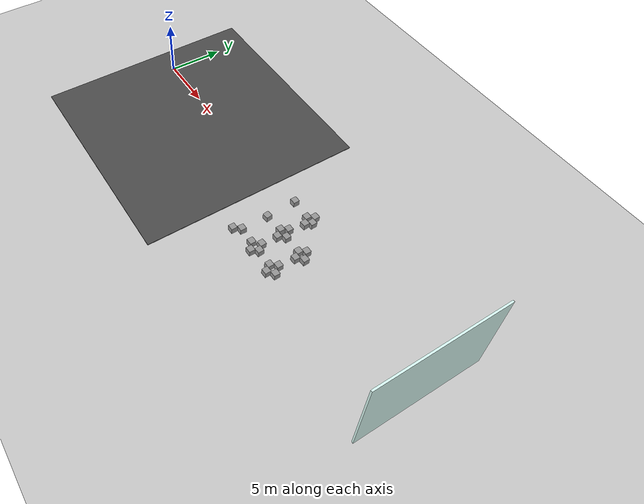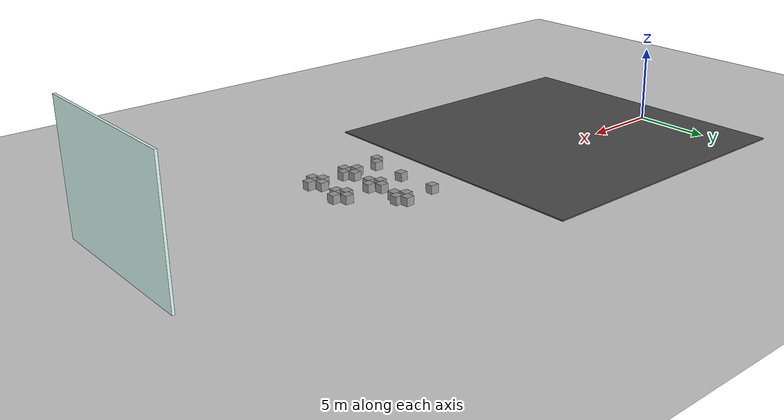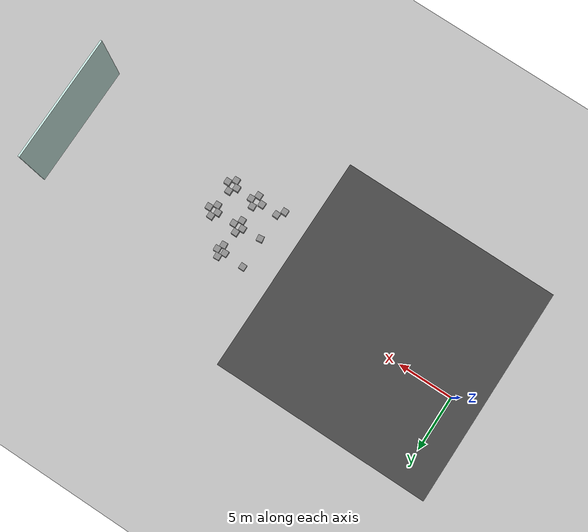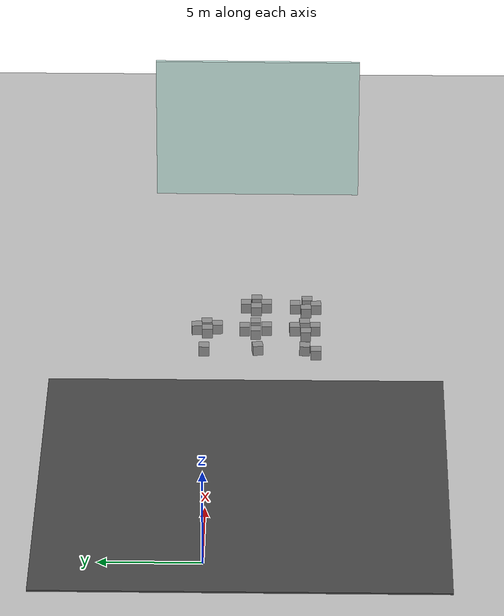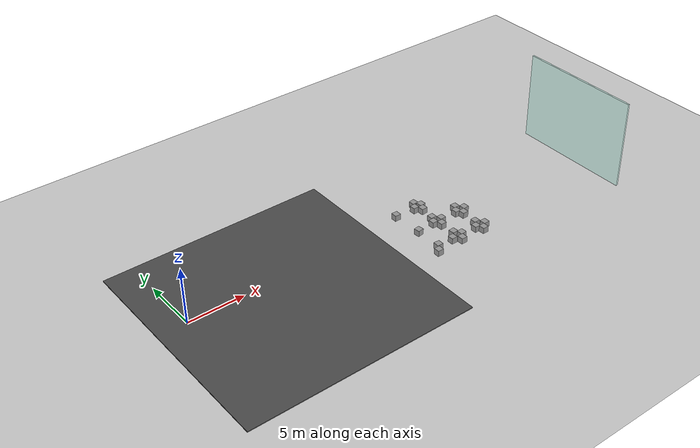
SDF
<sdf version="1.6">
 <world name="default">
  <model name="ground_plane">
   <static>1</static>
   <link name="link">
    <collision name="collision">
     <geometry><plane><normal>0 0 1</normal><size>100 100</size></plane></geometry>
     <surface>
      <contact><collide_bitmask>65535</collide_bitmask></contact>
      <friction><ode><mu>100</mu><mu2>50</mu2></ode></friction>
     </surface>
    </collision>
    <visual name="visual">
     <cast_shadows>0</cast_shadows>
     <geometry><plane><normal>0 0 1</normal><size>100 100</size></plane></geometry>
     <material>
      <script><uri>file://media/materials/scripts/gazebo.material</uri><name>Gazebo/Grey</name></script>
     </material>
    </visual>
   </link>
  </model>
  <model name="unit_box_0_clone_20">
   <pose>20.1335 0.39458 0.314113 2e-06 0 -0.001749</pose>
   <link name="link">
    <inertial>
     <mass>1</mass>
     <inertia>
      <ixx>0.166667</ixx>
      <ixy>0</ixy>
      <ixz>0</ixz>
      <iyy>0.166667</iyy>
      <iyz>0</iyz>
      <izz>0.166667</izz>
     </inertia>
    </inertial>
    <collision name="collision">
     <geometry><box><size>0.530101 0.530101 0.530101</size></box></geometry>
    </collision>
    <visual name="visual">
     <geometry><box><size>0.530101 0.530101 0.530101</size></box></geometry>
     <material>
      <script><name>Gazebo/Grey</name><uri>file://media/materials/scripts/gazebo.material</uri></script>
     </material>
    </visual>
   </link>
  </model>
  <model name="unit_box_0_clone_24">
   <pose>20.2313 -2.35129 0.314111 -1.1e-05 6e-06 0.142067</pose>
   <link name="link">
    <inertial>
     <mass>1</mass>
     <inertia>
      <ixx>0.166667</ixx>
      <ixy>0</ixy>
      <ixz>0</ixz>
      <iyy>0.166667</iyy>
      <iyz>0</iyz>
      <izz>0.166667</izz>
     </inertia>
    </inertial>
    <collision name="collision">
     <geometry><box><size>0.530101 0.530101 0.530101</size></box></geometry>
    </collision>
    <visual name="visual">
     <geometry><box><size>0.530101 0.530101 0.530101</size></box></geometry>
     <material>
      <script><name>Gazebo/Grey</name><uri>file://media/materials/scripts/gazebo.material</uri></script>
     </material>
    </visual>
   </link>
  </model>
  <model name="unit_box_0_clone_28">
   <pose>20.2089 -4.77116 0.314113 0 0 -0.035493</pose>
   <link name="link">
    <inertial>
     <mass>1</mass>
     <inertia>
      <ixx>0.166667</ixx>
      <ixy>0</ixy>
      <ixz>0</ixz>
      <iyy>0.166667</iyy>
      <iyz>0</iyz>
      <izz>0.166667</izz>
     </inertia>
    </inertial>
    <collision name="collision">
     <geometry><box><size>0.530101 0.530101 0.530101</size></box></geometry>
    </collision>
    <visual name="visual">
     <geometry><box><size>0.530101 0.530101 0.530101</size></box></geometry>
     <material>
      <script><name>Gazebo/Grey</name><uri>file://media/materials/scripts/gazebo.material</uri></script>
     </material>
    </visual>
   </link>
  </model>
  <model name="unit_box_0_clone_29">
   <pose>19.7625 -5.34364 0.31411 9e-06 -0 -0.00812</pose>
   <link name="link">
    <inertial>
     <mass>1</mass>
     <inertia>
      <ixx>0.166667</ixx>
      <ixy>0</ixy>
      <ixz>0</ixz>
      <iyy>0.166667</iyy>
      <iyz>0</iyz>
      <izz>0.166667</izz>
     </inertia>
    </inertial>
    <collision name="collision">
     <geometry><box><size>0.530101 0.530101 0.530101</size></box></geometry>
    </collision>
    <visual name="visual">
     <geometry><box><size>0.530101 0.530101 0.530101</size></box></geometry>
     <material>
      <script><name>Gazebo/Grey</name><uri>file://media/materials/scripts/gazebo.material</uri></script>
     </material>
    </visual>
   </link>
  </model>
  <model name="unit_box_0_clone_30">
   <pose>21.6915 -4.81691 0.31411 -9e-06 0 0</pose>
   <link name="link">
    <inertial>
     <mass>1</mass>
     <inertia>
      <ixx>0.166667</ixx>
      <ixy>0</ixy>
      <ixz>0</ixz>
      <iyy>0.166667</iyy>
      <iyz>0</iyz>
      <izz>0.166667</izz>
     </inertia>
    </inertial>
    <collision name="collision">
     <geometry><box><size>0.530101 0.530101 0.530101</size></box></geometry>
    </collision>
    <visual name="visual">
     <geometry><box><size>0.530101 0.530101 0.530101</size></box></geometry>
     <material>
      <script><name>Gazebo/Grey</name><uri>file://media/materials/scripts/gazebo.material</uri></script>
     </material>
    </visual>
   </link>
  </model>
  <model name="unit_box_0_clone_33">
   <pose>22.2748 -4.24632 0.314113 0 -0 0.060884</pose>
   <link name="link">
    <inertial>
     <mass>1</mass>
     <inertia>
      <ixx>0.166667</ixx>
      <ixy>0</ixy>
      <ixz>0</ixz>
      <iyy>0.166667</iyy>
      <iyz>0</iyz>
      <izz>0.166667</izz>
     </inertia>
    </inertial>
    <collision name="collision">
     <geometry><box><size>0.530101 0.530101 0.530101</size></box></geometry>
    </collision>
    <visual name="visual">
     <geometry><box><size>0.530101 0.530101 0.530101</size></box></geometry>
     <material>
      <script><name>Gazebo/Grey</name><uri>file://media/materials/scripts/gazebo.material</uri></script>
     </material>
    </visual>
   </link>
  </model>
  <model name="unit_box_0_clone_34">
   <pose>22.2394 -1.66119 0.31411 -9e-06 -0 1e-06</pose>
   <link name="link">
    <inertial>
     <mass>1</mass>
     <inertia>
      <ixx>0.166667</ixx>
      <ixy>0</ixy>
      <ixz>0</ixz>
      <iyy>0.166667</iyy>
      <iyz>0</iyz>
      <izz>0.166667</izz>
     </inertia>
    </inertial>
    <collision name="collision">
     <geometry><box><size>0.530101 0.530101 0.530101</size></box></geometry>
    </collision>
    <visual name="visual">
     <geometry><box><size>0.530101 0.530101 0.530101</size></box></geometry>
     <material>
      <script><name>Gazebo/Grey</name><uri>file://media/materials/scripts/gazebo.material</uri></script>
     </material>
    </visual>
   </link>
  </model>
  <model name="unit_box_0_clone_36">
   <pose>22.7152 -4.75531 0.314108 -1.1e-05 7e-06 0.049261</pose>
   <link name="link">
    <inertial>
     <mass>1</mass>
     <inertia>
      <ixx>0.166667</ixx>
      <ixy>0</ixy>
      <ixz>0</ixz>
      <iyy>0.166667</iyy>
      <iyz>0</iyz>
      <izz>0.166667</izz>
     </inertia>
    </inertial>
    <collision name="collision">
     <geometry><box><size>0.530101 0.530101 0.530101</size></box></geometry>
    </collision>
    <visual name="visual">
     <geometry><box><size>0.530101 0.530101 0.530101</size></box></geometry>
     <material>
      <script><name>Gazebo/Grey</name><uri>file://media/materials/scripts/gazebo.material</uri></script>
     </material>
    </visual>
   </link>
  </model>
  <model name="unit_box_0_clone_37">
   <pose>22.3075 -5.29948 0.314113 2e-06 -0 -0.002181</pose>
   <link name="link">
    <inertial>
     <mass>1</mass>
     <inertia>
      <ixx>0.166667</ixx>
      <ixy>0</ixy>
      <ixz>0</ixz>
      <iyy>0.166667</iyy>
      <iyz>0</iyz>
      <izz>0.166667</izz>
     </inertia>
    </inertial>
    <collision name="collision">
     <geometry><box><size>0.530101 0.530101 0.530101</size></box></geometry>
    </collision>
    <visual name="visual">
     <geometry><box><size>0.530101 0.530101 0.530101</size></box></geometry>
     <material>
      <script><name>Gazebo/Grey</name><uri>file://media/materials/scripts/gazebo.material</uri></script>
     </material>
    </visual>
   </link>
  </model>
  <model name="unit_box_0_clone_40">
   <pose>24.5965 -5.33599 0.314108 -1.1e-05 -7e-06 0.031886</pose>
   <link name="link">
    <inertial>
     <mass>1</mass>
     <inertia>
      <ixx>0.166667</ixx>
      <ixy>0</ixy>
      <ixz>0</ixz>
      <iyy>0.166667</iyy>
      <iyz>0</iyz>
      <izz>0.166667</izz>
     </inertia>
    </inertial>
    <collision name="collision">
     <geometry><box><size>0.530101 0.530101 0.530101</size></box></geometry>
    </collision>
    <visual name="visual">
     <geometry><box><size>0.530101 0.530101 0.530101</size></box></geometry>
     <material>
      <script><name>Gazebo/Grey</name><uri>file://media/materials/scripts/gazebo.material</uri></script>
     </material>
    </visual>
   </link>
  </model>
  <model name="unit_box_0_clone_45">
   <pose>24.7181 -1.70399 0.314109 6e-06 -9e-06 -0.02268</pose>
   <link name="link">
    <inertial>
     <mass>1</mass>
     <inertia>
      <ixx>0.166667</ixx>
      <ixy>0</ixy>
      <ixz>0</ixz>
      <iyy>0.166667</iyy>
      <iyz>0</iyz>
      <izz>0.166667</izz>
     </inertia>
    </inertial>
    <collision name="collision">
     <geometry><box><size>0.530101 0.530101 0.530101</size></box></geometry>
    </collision>
    <visual name="visual">
     <geometry><box><size>0.530101 0.530101 0.530101</size></box></geometry>
     <material>
      <script><name>Gazebo/Grey</name><uri>file://media/materials/scripts/gazebo.material</uri></script>
     </material>
    </visual>
   </link>
  </model>
  <model name="unit_box_0_clone_47">
   <pose>22.7204 0.296877 0.314108 -1.1e-05 7e-06 0.050942</pose>
   <link name="link">
    <inertial>
     <mass>1</mass>
     <inertia>
      <ixx>0.166667</ixx>
      <ixy>0</ixy>
      <ixz>0</ixz>
      <iyy>0.166667</iyy>
      <iyz>0</iyz>
      <izz>0.166667</izz>
     </inertia>
    </inertial>
    <collision name="collision">
     <geometry><box><size>0.530101 0.530101 0.530101</size></box></geometry>
    </collision>
    <visual name="visual">
     <geometry><box><size>0.530101 0.530101 0.530101</size></box></geometry>
     <material>
      <script><name>Gazebo/Grey</name><uri>file://media/materials/scripts/gazebo.material</uri></script>
     </material>
    </visual>
   </link>
  </model>
  <model name="unit_box_0_clone_48">
   <pose>22.352 0.810248 0.314113 0 -0 0.059344</pose>
   <link name="link">
    <inertial>
     <mass>1</mass>
     <inertia>
      <ixx>0.166667</ixx>
      <ixy>0</ixy>
      <ixz>0</ixz>
      <iyy>0.166667</iyy>
      <iyz>0</iyz>
      <izz>0.166667</izz>
     </inertia>
    </inertial>
    <collision name="collision">
     <geometry><box><size>0.530101 0.530101 0.530101</size></box></geometry>
    </collision>
    <visual name="visual">
     <geometry><box><size>0.530101 0.530101 0.530101</size></box></geometry>
     <material>
      <script><name>Gazebo/Grey</name><uri>file://media/materials/scripts/gazebo.material</uri></script>
     </material>
    </visual>
   </link>
  </model>
  <model name="unit_box_0_clone_22_clone_1">
   <pose>21.9071 -2.22874 0.314113 0 -0 0.018957</pose>
   <link name="link">
    <inertial>
     <mass>1</mass>
     <inertia>
      <ixx>0.166667</ixx>
      <ixy>0</ixy>
      <ixz>0</ixz>
      <iyy>0.166667</iyy>
      <iyz>0</iyz>
      <izz>0.166667</izz>
     </inertia>
    </inertial>
    <collision name="collision">
     <geometry><box><size>0.530101 0.530101 0.530101</size></box></geometry>
    </collision>
    <visual name="visual">
     <geometry><box><size>0.530101 0.530101 0.530101</size></box></geometry>
     <material>
      <script><name>Gazebo/Grey</name><uri>file://media/materials/scripts/gazebo.material</uri></script>
     </material>
    </visual>
   </link>
  </model>
  <model name="unit_box_0_clone_22_clone_2">
   <pose>22.314 -2.79446 0.314113 0 -0 0.018957</pose>
   <link name="link">
    <inertial>
     <mass>1</mass>
     <inertia>
      <ixx>0.166667</ixx>
      <ixy>0</ixy>
      <ixz>0</ixz>
      <iyy>0.166667</iyy>
      <iyz>0</iyz>
      <izz>0.166667</izz>
     </inertia>
    </inertial>
    <collision name="collision">
     <geometry><box><size>0.530101 0.530101 0.530101</size></box></geometry>
    </collision>
    <visual name="visual">
     <geometry><box><size>0.530101 0.530101 0.530101</size></box></geometry>
     <material>
      <script><name>Gazebo/Grey</name><uri>file://media/materials/scripts/gazebo.material</uri></script>
     </material>
    </visual>
   </link>
  </model>
  <model name="unit_box_0_clone_22_clone_3">
   <pose>22.7608 -2.22633 0.314113 0 -0 0.018957</pose>
   <link name="link">
    <inertial>
     <mass>1</mass>
     <inertia>
      <ixx>0.166667</ixx>
      <ixy>0</ixy>
      <ixz>0</ixz>
      <iyy>0.166667</iyy>
      <iyz>0</iyz>
      <izz>0.166667</izz>
     </inertia>
    </inertial>
    <collision name="collision">
     <geometry><box><size>0.530101 0.530101 0.530101</size></box></geometry>
    </collision>
    <visual name="visual">
     <geometry><box><size>0.530101 0.530101 0.530101</size></box></geometry>
     <material>
      <script><name>Gazebo/Grey</name><uri>file://media/materials/scripts/gazebo.material</uri></script>
     </material>
    </visual>
   </link>
  </model>
  <model name="unit_box_0_clone_22_clone_4">
   <pose>24.3724 -2.23827 0.314113 0 -0 0.019089</pose>
   <link name="link">
    <inertial>
     <mass>1</mass>
     <inertia>
      <ixx>0.166667</ixx>
      <ixy>0</ixy>
      <ixz>0</ixz>
      <iyy>0.166667</iyy>
      <iyz>0</iyz>
      <izz>0.166667</izz>
     </inertia>
    </inertial>
    <collision name="collision">
     <geometry><box><size>0.530101 0.530101 0.530101</size></box></geometry>
    </collision>
    <visual name="visual">
     <geometry><box><size>0.530101 0.530101 0.530101</size></box></geometry>
     <material>
      <script><name>Gazebo/Grey</name><uri>file://media/materials/scripts/gazebo.material</uri></script>
     </material>
    </visual>
   </link>
  </model>
  <model name="unit_box_0_clone_22_clone_5">
   <pose>24.7363 -2.76041 0.31411 9e-06 1e-06 0.031943</pose>
   <link name="link">
    <inertial>
     <mass>1</mass>
     <inertia>
      <ixx>0.166667</ixx>
      <ixy>0</ixy>
      <ixz>0</ixz>
      <iyy>0.166667</iyy>
      <iyz>0</iyz>
      <izz>0.166667</izz>
     </inertia>
    </inertial>
    <collision name="collision">
     <geometry><box><size>0.530101 0.530101 0.530101</size></box></geometry>
    </collision>
    <visual name="visual">
     <geometry><box><size>0.530101 0.530101 0.530101</size></box></geometry>
     <material>
      <script><name>Gazebo/Grey</name><uri>file://media/materials/scripts/gazebo.material</uri></script>
     </material>
    </visual>
   </link>
  </model>
  <model name="unit_box_0_clone_22_clone_11">
   <pose>22.4569 -0.250788 0.314113 0 -0 0.063214</pose>
   <link name="link">
    <inertial>
     <mass>1</mass>
     <inertia>
      <ixx>0.166667</ixx>
      <ixy>0</ixy>
      <ixz>0</ixz>
      <iyy>0.166667</iyy>
      <iyz>0</iyz>
      <izz>0.166667</izz>
     </inertia>
    </inertial>
    <collision name="collision">
     <geometry><box><size>0.530101 0.530101 0.530101</size></box></geometry>
    </collision>
    <visual name="visual">
     <geometry><box><size>0.530101 0.530101 0.530101</size></box></geometry>
     <material>
      <script><name>Gazebo/Grey</name><uri>file://media/materials/scripts/gazebo.material</uri></script>
     </material>
    </visual>
   </link>
  </model>
  <model name="unit_box_0_clone_22_clone_12">
   <pose>21.9954 0.262125 0.314108 9e-06 -9e-06 0.024576</pose>
   <link name="link">
    <inertial>
     <mass>1</mass>
     <inertia>
      <ixx>0.166667</ixx>
      <ixy>0</ixy>
      <ixz>0</ixz>
      <iyy>0.166667</iyy>
      <iyz>0</iyz>
      <izz>0.166667</izz>
     </inertia>
    </inertial>
    <collision name="collision">
     <geometry><box><size>0.530101 0.530101 0.530101</size></box></geometry>
    </collision>
    <visual name="visual">
     <geometry><box><size>0.530101 0.530101 0.530101</size></box></geometry>
     <material>
      <script><name>Gazebo/Grey</name><uri>file://media/materials/scripts/gazebo.material</uri></script>
     </material>
    </visual>
   </link>
  </model>
  <model name="unit_box_0_clone_22_clone_13">
   <pose>25.2504 -2.25517 0.314108 -1.1e-05 -7e-06 0.032957</pose>
   <link name="link">
    <inertial>
     <mass>1</mass>
     <inertia>
      <ixx>0.166667</ixx>
      <ixy>0</ixy>
      <ixz>0</ixz>
      <iyy>0.166667</iyy>
      <iyz>0</iyz>
      <izz>0.166667</izz>
     </inertia>
    </inertial>
    <collision name="collision">
     <geometry><box><size>0.530101 0.530101 0.530101</size></box></geometry>
    </collision>
    <visual name="visual">
     <geometry><box><size>0.530101 0.530101 0.530101</size></box></geometry>
     <material>
      <script><name>Gazebo/Grey</name><uri>file://media/materials/scripts/gazebo.material</uri></script>
     </material>
    </visual>
   </link>
  </model>
  <model name="world_frame">
   <link name="Wall_211">
    <pose>23.7999 0 0 0 -0 1.56702</pose>
    <visual name="Wall_211_Visual">
     <pose>0 0 4 0 -0 0</pose>
     <geometry><box><size>11 0.15 8</size></box></geometry>
     <material>
      <script><uri>file://media/materials/scripts/gazebo.material</uri><name>Gazebo/Grey</name></script>
      <ambient>0.866667 1 0.972549 1</ambient>
      <shader type="pixel"/>
      <diffuse>0.7 0.7 0.7 1</diffuse>
      <specular>0.01 0.01 0.01 1</specular>
      <emissive>0 0 0 1</emissive>
     </material>
     <meta><layer>0</layer></meta>
    </visual>
    <collision name="Wall_211_Collision">
     <pose>0 0 4 0 -0 0</pose>
     <geometry><box><size>11 0.15 8</size></box></geometry>
     <surface>
      <friction>
       <ode><mu>1</mu><mu2>1</mu2><fdir1>0 0 0</fdir1><slip1>0</slip1><slip2>0</slip2></ode>
       <torsional>
        <coefficient>1</coefficient>
        <patch_radius>0</patch_radius>
        <surface_radius>0</surface_radius>
        <use_patch_radius>1</use_patch_radius>
        <ode><slip>0</slip></ode>
       </torsional>
      </friction>
      <bounce><restitution_coefficient>0</restitution_coefficient><threshold>1e+06</threshold></bounce>
      <contact>
       <collide_without_contact>0</collide_without_contact>
       <collide_without_contact_bitmask>1</collide_without_contact_bitmask>
       <collide_bitmask>1</collide_bitmask>
       <ode>
        <soft_cfm>0</soft_cfm>
        <soft_erp>0.2</soft_erp>
        <kp>1e+13</kp>
        <kd>1</kd>
        <max_vel>0.01</max_vel>
        <min_depth>0</min_depth>
       </ode>
       <bullet>
        <split_impulse>1</split_impulse>
        <split_impulse_penetration_threshold>-0.01</split_impulse_penetration_threshold>
        <soft_cfm>0</soft_cfm>
        <soft_erp>0.2</soft_erp>
        <kp>1e+13</kp>
        <kd>1</kd>
       </bullet>
      </contact>
     </surface>
    </collision>
   </link>
   <static>1</static>
   <pose>14.3624 -2.13506 0 0 -0 0</pose>
  </model>
  <model name="unit_box_0_clone_22_clone_5_clone">
   <pose>24.6403 -4.25925 0.314113 0 -0 0.018957</pose>
   <link name="link">
    <inertial>
     <mass>1</mass>
     <inertia>
      <ixx>0.166667</ixx>
      <ixy>0</ixy>
      <ixz>0</ixz>
      <iyy>0.166667</iyy>
      <iyz>0</iyz>
      <izz>0.166667</izz>
     </inertia>
    </inertial>
    <collision name="collision">
     <geometry><box><size>0.530101 0.530101 0.530101</size></box></geometry>
    </collision>
    <visual name="visual">
     <geometry><box><size>0.530101 0.530101 0.530101</size></box></geometry>
     <material>
      <script><name>Gazebo/Grey</name><uri>file://media/materials/scripts/gazebo.material</uri></script>
     </material>
    </visual>
   </link>
  </model>
  <model name="unit_box_0_clone_22_clone_5_clone_0">
   <pose>24.2103 -4.81778 0.314108 -1.1e-05 -7e-06 0.031892</pose>
   <link name="link">
    <inertial>
     <mass>1</mass>
     <inertia>
      <ixx>0.166667</ixx>
      <ixy>0</ixy>
      <ixz>0</ixz>
      <iyy>0.166667</iyy>
      <iyz>0</iyz>
      <izz>0.166667</izz>
     </inertia>
    </inertial>
    <collision name="collision">
     <geometry><box><size>0.530101 0.530101 0.530101</size></box></geometry>
    </collision>
    <visual name="visual">
     <geometry><box><size>0.530101 0.530101 0.530101</size></box></geometry>
     <material>
      <script><name>Gazebo/Grey</name><uri>file://media/materials/scripts/gazebo.material</uri></script>
     </material>
    </visual>
   </link>
  </model>
  <model name="unit_box_0_clone_22_clone_5_clone_1">
   <pose>25.1325 -4.8728 0.314113 0 -0 0.018957</pose>
   <link name="link">
    <inertial>
     <mass>1</mass>
     <inertia>
      <ixx>0.166667</ixx>
      <ixy>0</ixy>
      <ixz>0</ixz>
      <iyy>0.166667</iyy>
      <iyz>0</iyz>
      <izz>0.166667</izz>
     </inertia>
    </inertial>
    <collision name="collision">
     <geometry><box><size>0.530101 0.530101 0.530101</size></box></geometry>
    </collision>
    <visual name="visual">
     <geometry><box><size>0.530101 0.530101 0.530101</size></box></geometry>
     <material>
      <script><name>Gazebo/Grey</name><uri>file://media/materials/scripts/gazebo.material</uri></script>
     </material>
    </visual>
   </link>
  </model>
  <model name="asphalt_plane">
   <static>1</static>
   <link name="link">
    <collision name="collision"><geometry><box><size>20 20 0.1</size></box></geometry></collision>
    <visual name="visual">
     <cast_shadows>0</cast_shadows>
     <geometry><box><size>20 20 0.1</size></box></geometry>
     <material>
      <script>
       <uri>model://asphalt_plane/materials/scripts</uri>
       <uri>model://asphalt_plane/materials/textures</uri>
       <name>vrc/asphalt</name>
      </script>
     </material>
    </visual>
   </link>
   <pose>7.45828 -1.78814 -0.021157 0 -0 0</pose>
  </model>
 </world>
</sdf>
